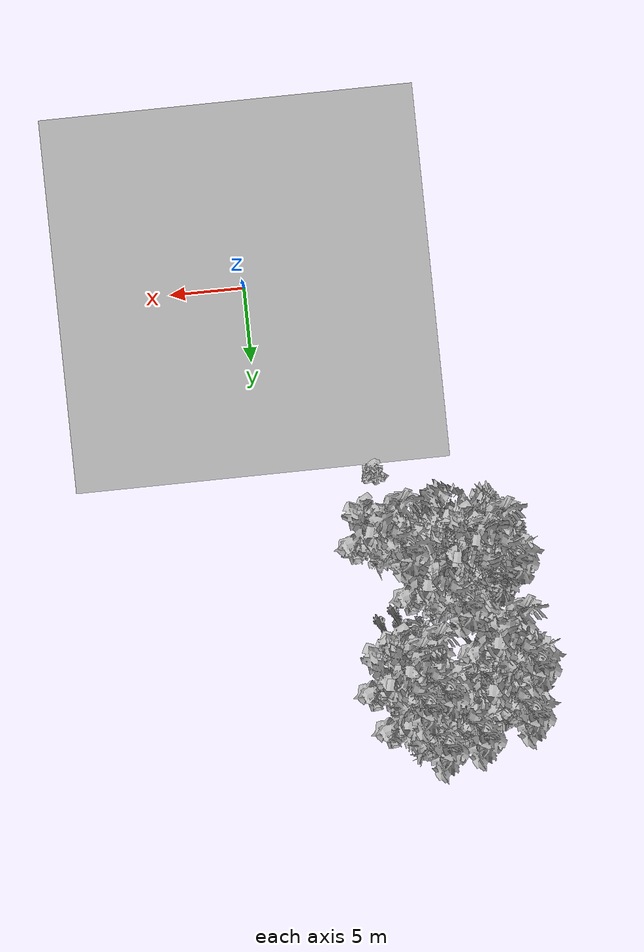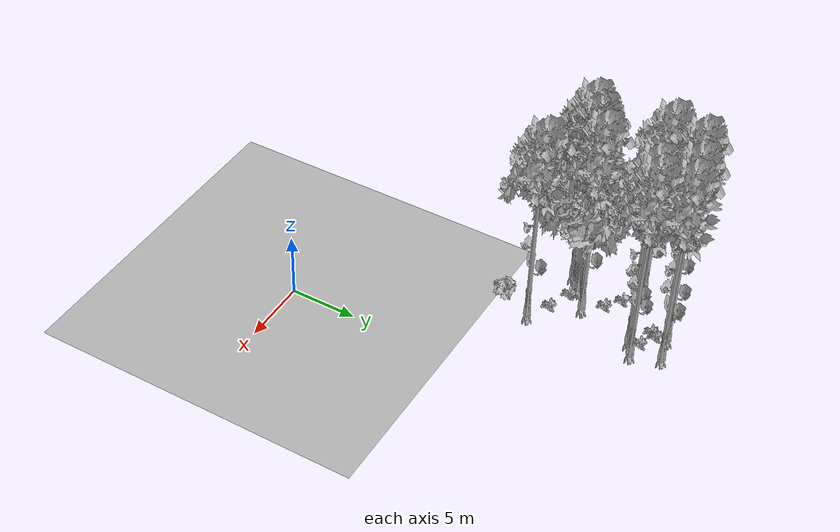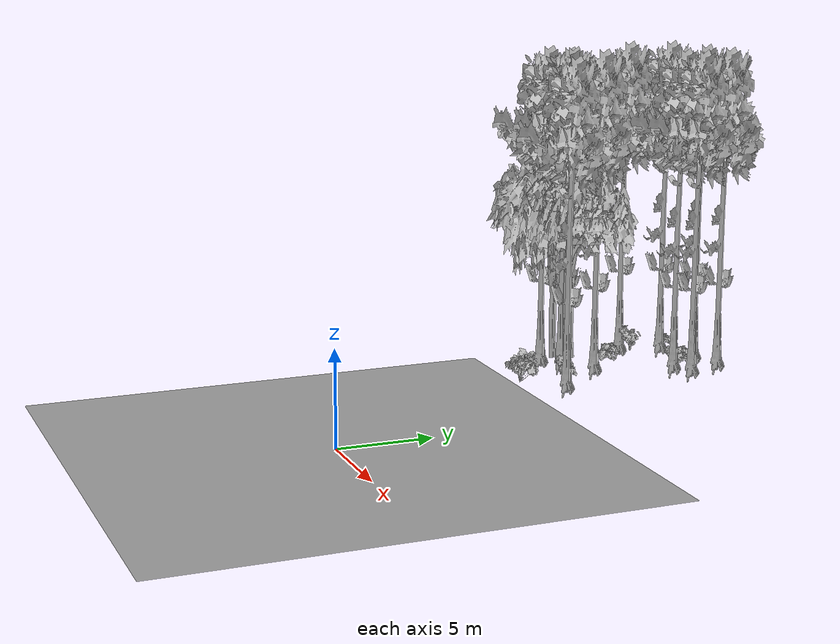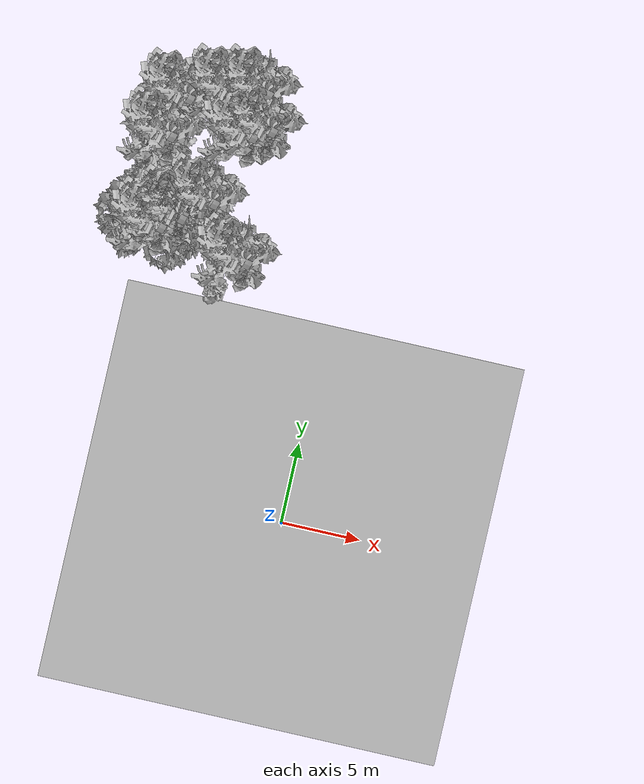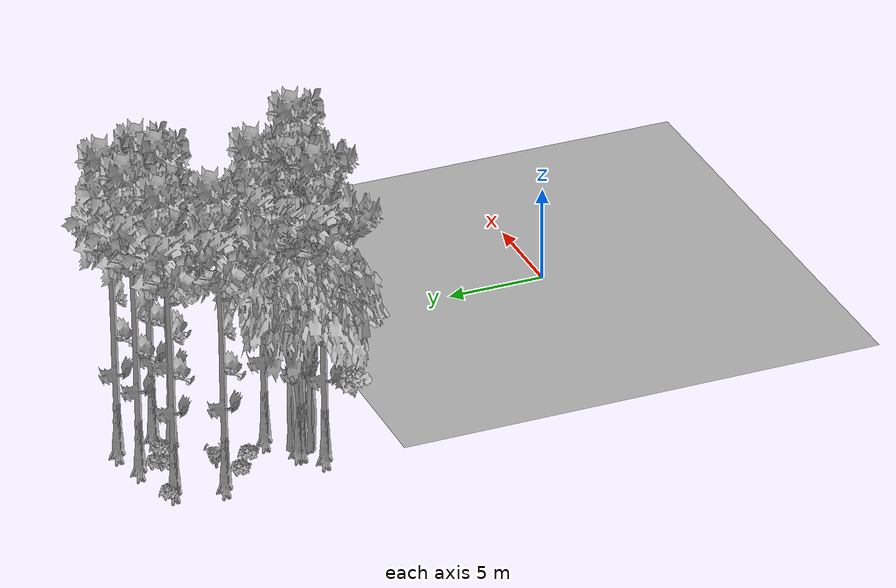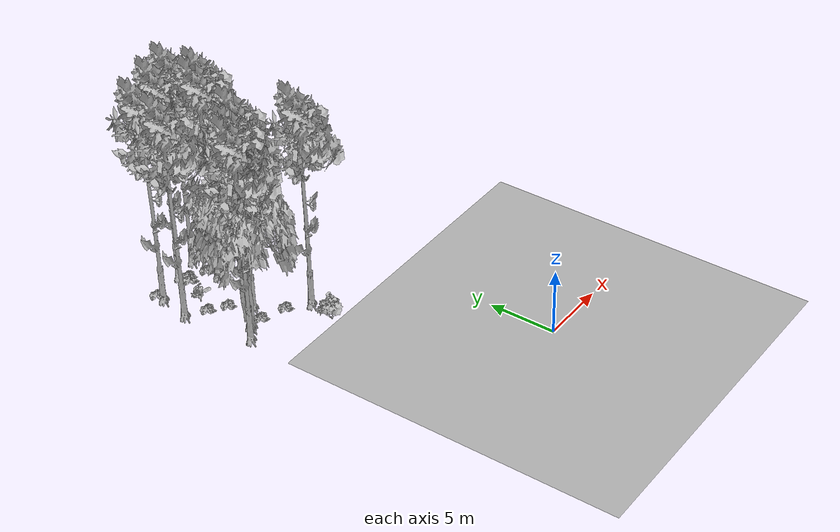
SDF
<sdf version="1.7">
 <world name="default">
  <model name="ground_plane">
   <static>1</static>
   <link name="link">
    <collision name="collision">
     <pose>-50 0 0 0 -0 0</pose>
     <geometry><plane><normal>0 0 1</normal><size>80 80</size></plane></geometry>
     <surface><contact><ode><min_depth>0.01</min_depth><max_vel>0</max_vel></ode></contact></surface>
    </collision>
    <visual name="grass">
     <cast_shadows>0</cast_shadows>
     <geometry>
      <mesh>
       <scale>0.46714285714285714 0.46714285714285714 0.1</scale>
       <uri>file://grass_plane/meshes/grass_plane.dae</uri>
      </mesh>
     </geometry>
    </visual>
   </link>
  </model>
  <model name="Tree 15">
   <static>1</static>
   <pose>-12.438555484064668 21.692388034909236 0 1.57079 -0 0</pose>
   <link name="link">
    <collision name="collision">
     <geometry><mesh><scale>3.5 5 3.5</scale><uri>model://tree_9/meshes/tree_9.obj</uri></mesh></geometry>
    </collision>
    <visual name="visual">
     <geometry><mesh><scale>3.5 5 3.5</scale><uri>model://tree_9/meshes/tree_9.obj</uri></mesh></geometry>
    </visual>
   </link>
  </model>
  <model name="Tree 170">
   <static>1</static>
   <pose>-9.151679752448725 18.405836630513093 0 1.57079 -0 0</pose>
   <link name="link">
    <collision name="collision">
     <geometry><mesh><scale>3.5 5 3.5</scale><uri>model://tree_9/meshes/tree_9.obj</uri></mesh></geometry>
    </collision>
    <visual name="visual">
     <geometry><mesh><scale>3.5 5 3.5</scale><uri>model://tree_9/meshes/tree_9.obj</uri></mesh></geometry>
    </visual>
   </link>
  </model>
  <model name="Tree 273">
   <static>1</static>
   <pose>-9.391791453475534 24.892195400244162 0 1.57079 -0 0</pose>
   <link name="link">
    <collision name="collision">
     <geometry><mesh><scale>3.5 5 3.5</scale><uri>model://tree_9/meshes/tree_9.obj</uri></mesh></geometry>
    </collision>
    <visual name="visual">
     <geometry><mesh><scale>3.5 5 3.5</scale><uri>model://tree_9/meshes/tree_9.obj</uri></mesh></geometry>
    </visual>
   </link>
  </model>
  <model name="Tree 306">
   <static>1</static>
   <pose>-6.524974443941964 15.41984793327029 0 1.57079 -0 0</pose>
   <link name="link">
    <collision name="collision">
     <geometry><mesh><scale>3.5 5 3.5</scale><uri>model://tree_9/meshes/tree_9.obj</uri></mesh></geometry>
    </collision>
    <visual name="visual">
     <geometry><mesh><scale>3.5 5 3.5</scale><uri>model://tree_9/meshes/tree_9.obj</uri></mesh></geometry>
    </visual>
   </link>
  </model>
  <model name="Tree 313">
   <static>1</static>
   <pose>-10.806039123057182 17.658771082877664 0 1.57079 -0 0</pose>
   <link name="link">
    <collision name="collision">
     <geometry><mesh><scale>3.5 5 3.5</scale><uri>model://tree_2/meshes/tree_2.obj</uri></mesh></geometry>
    </collision>
    <visual name="visual">
     <geometry><mesh><scale>3.5 5 3.5</scale><uri>model://tree_2/meshes/tree_2.obj</uri></mesh></geometry>
    </visual>
   </link>
  </model>
  <model name="Tree 329">
   <static>1</static>
   <pose>-11.914930879292523 24.06903019397548 0 1.57079 -0 0</pose>
   <link name="link">
    <collision name="collision">
     <geometry><mesh><scale>3.5 5 3.5</scale><uri>model://tree_9/meshes/tree_9.obj</uri></mesh></geometry>
    </collision>
    <visual name="visual">
     <geometry><mesh><scale>3.5 5 3.5</scale><uri>model://tree_9/meshes/tree_9.obj</uri></mesh></geometry>
    </visual>
   </link>
  </model>
  <model name="Tree 404">
   <static>1</static>
   <pose>-7.507461369255591 25.301905191992603 0 1.57079 -0 0</pose>
   <link name="link">
    <collision name="collision">
     <geometry><mesh><scale>3.5 5 3.5</scale><uri>model://tree_9/meshes/tree_9.obj</uri></mesh></geometry>
    </collision>
    <visual name="visual">
     <geometry><mesh><scale>3.5 5 3.5</scale><uri>model://tree_9/meshes/tree_9.obj</uri></mesh></geometry>
    </visual>
   </link>
  </model>
  <model name="Tree 453">
   <static>1</static>
   <pose>-10.8184026336831 17.140541112176706 0 1.57079 -0 0</pose>
   <link name="link">
    <collision name="collision">
     <geometry><mesh><scale>3.5 5 3.5</scale><uri>model://tree_9/meshes/tree_9.obj</uri></mesh></geometry>
    </collision>
    <visual name="visual">
     <geometry><mesh><scale>3.5 5 3.5</scale><uri>model://tree_9/meshes/tree_9.obj</uri></mesh></geometry>
    </visual>
   </link>
  </model>
  <model name="Tree 460">
   <static>1</static>
   <pose>-6.778142205048933 23.254796851033376 0 1.57079 -0 0</pose>
   <link name="link">
    <collision name="collision">
     <geometry><mesh><scale>3.5 5 3.5</scale><uri>model://tree_9/meshes/tree_9.obj</uri></mesh></geometry>
    </collision>
    <visual name="visual">
     <geometry><mesh><scale>3.5 5 3.5</scale><uri>model://tree_9/meshes/tree_9.obj</uri></mesh></geometry>
    </visual>
   </link>
  </model>
  <model name="Tree 522">
   <static>1</static>
   <pose>-11.288614596774412 16.81579279007984 0 1.57079 -0 0</pose>
   <link name="link">
    <collision name="collision">
     <geometry><mesh><scale>3.5 5 3.5</scale><uri>model://tree_2/meshes/tree_2.obj</uri></mesh></geometry>
    </collision>
    <visual name="visual">
     <geometry><mesh><scale>3.5 5 3.5</scale><uri>model://tree_2/meshes/tree_2.obj</uri></mesh></geometry>
    </visual>
   </link>
  </model>
  <model name="Tree 556">
   <static>1</static>
   <pose>-7.7960776086880905 22.678208624074607 0 1.57079 -0 0</pose>
   <link name="link">
    <collision name="collision">
     <geometry><mesh><scale>3.5 5 3.5</scale><uri>model://tree_9/meshes/tree_9.obj</uri></mesh></geometry>
    </collision>
    <visual name="visual">
     <geometry><mesh><scale>3.5 5 3.5</scale><uri>model://tree_9/meshes/tree_9.obj</uri></mesh></geometry>
    </visual>
   </link>
  </model>
  <model name="Tree 601">
   <static>1</static>
   <pose>-10.758247696952228 17.354098893708432 0 1.57079 -0 0</pose>
   <link name="link">
    <collision name="collision">
     <geometry><mesh><scale>3.5 5 3.5</scale><uri>model://tree_9/meshes/tree_9.obj</uri></mesh></geometry>
    </collision>
    <visual name="visual">
     <geometry><mesh><scale>3.5 5 3.5</scale><uri>model://tree_9/meshes/tree_9.obj</uri></mesh></geometry>
    </visual>
   </link>
  </model>
  <model name="Tree 633">
   <static>1</static>
   <pose>-11.865688118299815 16.37578349693746 0 1.57079 -0 0</pose>
   <link name="link">
    <collision name="collision">
     <geometry><mesh><scale>3.5 5 3.5</scale><uri>model://tree_9/meshes/tree_9.obj</uri></mesh></geometry>
    </collision>
    <visual name="visual">
     <geometry><mesh><scale>3.5 5 3.5</scale><uri>model://tree_9/meshes/tree_9.obj</uri></mesh></geometry>
    </visual>
   </link>
  </model>
  <model name="Bush 29">
   <static>1</static>
   <pose>-8.150629452543711 23.375021780866298 0 1.57079 -0 0</pose>
   <link name="link">
    <collision name="collision">
     <geometry><mesh><scale>2 2 2</scale><uri>model://bush_2/meshes/bush_2.obj</uri></mesh></geometry>
     <surface><contact><collide_without_contact>false</collide_without_contact></contact></surface>
    </collision>
    <visual name="visual">
     <geometry><mesh><scale>2 2 2</scale><uri>model://bush_2/meshes/bush_2.obj</uri></mesh></geometry>
    </visual>
   </link>
  </model>
  <model name="Bush 102">
   <static>1</static>
   <pose>-8.271164637394605 16.275173464784004 0 1.57079 -0 0</pose>
   <link name="link">
    <collision name="collision">
     <geometry><mesh><scale>2 2 2</scale><uri>model://bush_2/meshes/bush_2.obj</uri></mesh></geometry>
     <surface><contact><collide_without_contact>false</collide_without_contact></contact></surface>
    </collision>
    <visual name="visual">
     <geometry><mesh><scale>2 2 2</scale><uri>model://bush_2/meshes/bush_2.obj</uri></mesh></geometry>
    </visual>
   </link>
  </model>
  <model name="Bush 108">
   <static>1</static>
   <pose>-9.6086977512688 23.61445750697115 0 1.57079 -0 0</pose>
   <link name="link">
    <collision name="collision">
     <geometry><mesh><scale>2 2 2</scale><uri>model://bush_2/meshes/bush_2.obj</uri></mesh></geometry>
     <surface><contact><collide_without_contact>false</collide_without_contact></contact></surface>
    </collision>
    <visual name="visual">
     <geometry><mesh><scale>2 2 2</scale><uri>model://bush_2/meshes/bush_2.obj</uri></mesh></geometry>
    </visual>
   </link>
  </model>
  <model name="Bush 173">
   <static>1</static>
   <pose>-7.295208520763818 13.025297123772319 0 1.57079 -0 0</pose>
   <link name="link">
    <collision name="collision">
     <geometry><mesh><scale>2 2 2</scale><uri>model://bush_1/meshes/bush_1.obj</uri></mesh></geometry>
     <surface><contact><collide_without_contact>false</collide_without_contact></contact></surface>
    </collision>
    <visual name="visual">
     <geometry><mesh><scale>2 2 2</scale><uri>model://bush_1/meshes/bush_1.obj</uri></mesh></geometry>
    </visual>
   </link>
  </model>
  <model name="Bush 199">
   <static>1</static>
   <pose>-10.865225775264406 21.571570588535778 0 1.57079 -0 0</pose>
   <link name="link">
    <collision name="collision">
     <geometry><mesh><scale>2 2 2</scale><uri>model://bush_0/meshes/bush_0.obj</uri></mesh></geometry>
     <surface><contact><collide_without_contact>false</collide_without_contact></contact></surface>
    </collision>
    <visual name="visual">
     <geometry><mesh><scale>2 2 2</scale><uri>model://bush_0/meshes/bush_0.obj</uri></mesh></geometry>
    </visual>
   </link>
  </model>
  <model name="Bush 273">
   <static>1</static>
   <pose>-12.176065996371126 24.370432426062322 0 1.57079 -0 0</pose>
   <link name="link">
    <collision name="collision">
     <geometry><mesh><scale>2 2 2</scale><uri>model://bush_2/meshes/bush_2.obj</uri></mesh></geometry>
     <surface><contact><collide_without_contact>false</collide_without_contact></contact></surface>
    </collision>
    <visual name="visual">
     <geometry><mesh><scale>2 2 2</scale><uri>model://bush_2/meshes/bush_2.obj</uri></mesh></geometry>
    </visual>
   </link>
  </model>
  <model name="Bush 281">
   <static>1</static>
   <pose>-10.28973034866014 19.648864354904134 0 1.57079 -0 0</pose>
   <link name="link">
    <collision name="collision">
     <geometry><mesh><scale>2 2 2</scale><uri>model://bush_2/meshes/bush_2.obj</uri></mesh></geometry>
     <surface><contact><collide_without_contact>false</collide_without_contact></contact></surface>
    </collision>
    <visual name="visual">
     <geometry><mesh><scale>2 2 2</scale><uri>model://bush_2/meshes/bush_2.obj</uri></mesh></geometry>
    </visual>
   </link>
  </model>
  <model name="Bush 386">
   <static>1</static>
   <pose>-10.07233256940427 16.944191712527292 0 1.57079 -0 0</pose>
   <link name="link">
    <collision name="collision">
     <geometry><mesh><scale>2 2 2</scale><uri>model://bush_2/meshes/bush_2.obj</uri></mesh></geometry>
     <surface><contact><collide_without_contact>false</collide_without_contact></contact></surface>
    </collision>
    <visual name="visual">
     <geometry><mesh><scale>2 2 2</scale><uri>model://bush_2/meshes/bush_2.obj</uri></mesh></geometry>
    </visual>
   </link>
  </model>
  <model name="Bush 444">
   <static>1</static>
   <pose>-9.342672420525176 24.008175274549345 0 1.57079 -0 0</pose>
   <link name="link">
    <collision name="collision">
     <geometry><mesh><scale>2 2 2</scale><uri>model://bush_2/meshes/bush_2.obj</uri></mesh></geometry>
     <surface><contact><collide_without_contact>false</collide_without_contact></contact></surface>
    </collision>
    <visual name="visual">
     <geometry><mesh><scale>2 2 2</scale><uri>model://bush_2/meshes/bush_2.obj</uri></mesh></geometry>
    </visual>
   </link>
  </model>
  <model name="Bush 615">
   <static>1</static>
   <pose>-11.433654319680702 20.49299964031333 0 1.57079 -0 0</pose>
   <link name="link">
    <collision name="collision">
     <geometry><mesh><scale>2 2 2</scale><uri>model://bush_2/meshes/bush_2.obj</uri></mesh></geometry>
     <surface><contact><collide_without_contact>false</collide_without_contact></contact></surface>
    </collision>
    <visual name="visual">
     <geometry><mesh><scale>2 2 2</scale><uri>model://bush_2/meshes/bush_2.obj</uri></mesh></geometry>
    </visual>
   </link>
  </model>
 </world>
</sdf>
